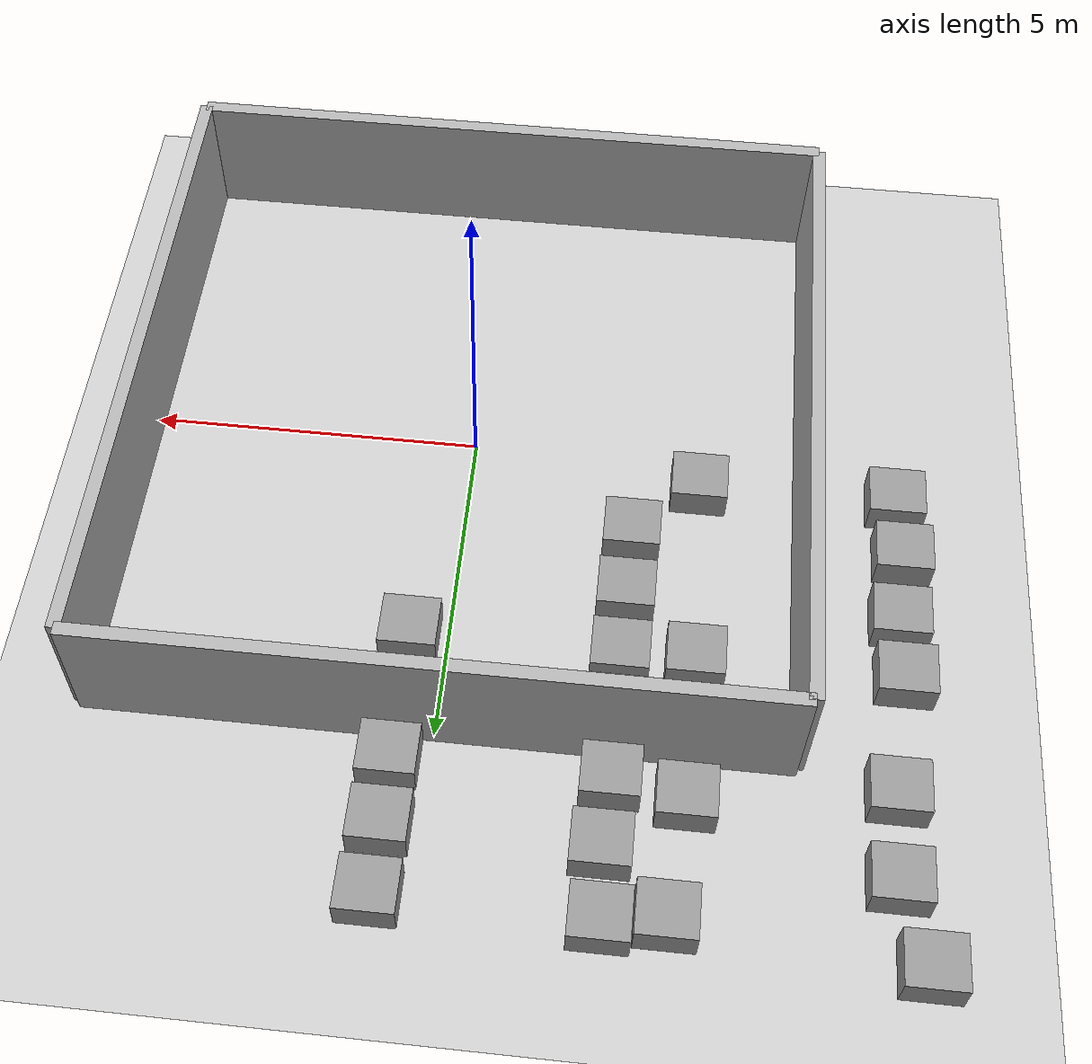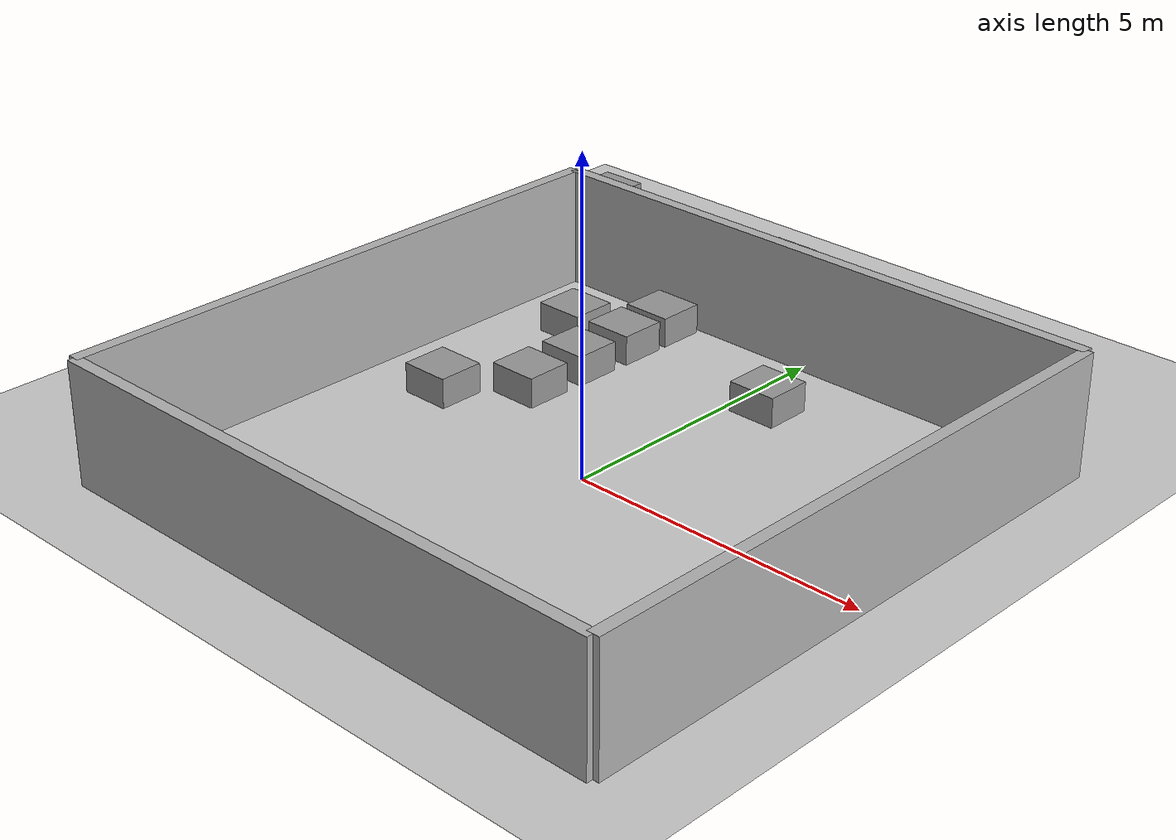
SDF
<?xml version="1.0" ?>
<sdf version="1.6">
  <world name="meu_mundo">
    <!-- Configuração padrão do mundo -->
    <include>
      <uri>model://sun</uri>
    </include>
    <include>
      <uri>model://ground_plane</uri>
    </include>

    <!-- Definição das paredes -->
    <model name="parede_norte">
      <static>true</static>
      <link name="link">
        <visual name="visual">
          <geometry>
            <box>
              <size>10 0.2 2</size>
            </box>
          </geometry>
          <material>
            <ambient>0.7 0.7 0.7 1</ambient>
          </material>
        </visual>
        <collision name="collision">
          <geometry>
            <box>
              <size>10 0.2 2</size>
            </box>
          </geometry>
          <surface>
            <contact>
              <collide_bitmask>0x01</collide_bitmask>
            </contact>
          </surface>
        </collision>
        <pose>0 5 1 0 0 0</pose>
      </link>
    </model>

    <model name="parede_sul">
      <static>true</static>
      <link name="link">
        <visual name="visual">
          <geometry>
            <box>
              <size>10 0.2 2</size>
            </box>
          </geometry>
          <material>
            <ambient>0.7 0.7 0.7 1</ambient>
          </material>
        </visual>
        <collision name="collision">
          <geometry>
            <box>
              <size>10 0.2 2</size>
            </box>
          </geometry>
          <surface>
            <contact>
              <collide_bitmask>0x01</collide_bitmask>
            </contact>
          </surface>
        </collision>
        <pose>0 -5 1 0 0 0</pose>
      </link>
    </model>

    <model name="parede_leste">
      <static>true</static>
      <link name="link">
        <visual name="visual">
          <geometry>
            <box>
              <size>0.2 10 2</size>
            </box>
          </geometry>
          <material>
            <ambient>0.7 0.7 0.7 1</ambient>
          </material>
        </visual>
        <collision name="collision">
          <geometry>
            <box>
              <size>0.2 10 2</size>
            </box>
          </geometry>
          <surface>
            <contact>
              <collide_bitmask>0x01</collide_bitmask>
            </contact>
          </surface>
        </collision>
        <pose>5 0 1 0 0 0</pose>
      </link>
    </model>

    <model name="parede_oeste">
      <static>true</static>
      <link name="link">
        <visual name="visual">
          <geometry>
            <box>
              <size>0.2 10 2</size>
            </box>
          </geometry>
          <material>
            <ambient>0.7 0.7 0.7 1</ambient>
          </material>
        </visual>
        <collision name="collision">
          <geometry>
            <box>
              <size>0.2 10 2</size>
            </box>
          </geometry>
          <surface>
            <contact>
              <collide_bitmask>0x01</collide_bitmask>
            </contact>
          </surface>
        </collision>
        <pose>-5 0 1 0 0 0</pose>
      </link>
    </model>

    <!-- Blocos posicionados aleatoriamente -->
   <model name='unit_box_clone_0'>
      <pose frame=''>0.542038 3.47351 0.249259 0 -0 1e-06</pose>
      <link name='link'>
        <inertial>
          <mass>1</mass>
          <inertia>
            <ixx>0.166667</ixx>
            <ixy>0</ixy>
            <ixz>0</ixz>
            <iyy>0.166667</iyy>
            <iyz>0</iyz>
            <izz>0.166667</izz>
          </inertia>
        </inertial>
        <collision name='collision'>
          <geometry>
            <box>
              <size>0.832462 0.776172 0.498517</size>
            </box>
          </geometry>
          <max_contacts>10</max_contacts>
          <surface>
            <contact>
              <ode/>
            </contact>
            <bounce/>
            <friction>
              <torsional>
                <ode/>
              </torsional>
              <ode/>
            </friction>
          </surface>
        </collision>
        <visual name='visual'>
          <geometry>
            <box>
              <size>0.832462 0.776172 0.498517</size>
            </box>
          </geometry>
          <material>
            <script>
              <name>Gazebo/Grey</name>
              <uri>file://media/materials/scripts/gazebo.material</uri>
            </script>
          </material>
        </visual>
        <self_collide>0</self_collide>
        <enable_wind>0</enable_wind>
        <kinematic>0</kinematic>
      </link>
    </model>
    <model name='unit_box_clone_1'>
      <pose frame=''>0.55967 5.47509 0.249259 0 -0 1e-06</pose>
      <link name='link'>
        <inertial>
          <mass>1</mass>
          <inertia>
            <ixx>0.166667</ixx>
            <ixy>0</ixy>
            <ixz>0</ixz>
            <iyy>0.166667</iyy>
            <iyz>0</iyz>
            <izz>0.166667</izz>
          </inertia>
        </inertial>
        <collision name='collision'>
          <geometry>
            <box>
              <size>0.832462 0.776172 0.498517</size>
            </box>
          </geometry>
          <max_contacts>10</max_contacts>
          <surface>
            <contact>
              <ode/>
            </contact>
            <bounce/>
            <friction>
              <torsional>
                <ode/>
              </torsional>
              <ode/>
            </friction>
          </surface>
        </collision>
        <visual name='visual'>
          <geometry>
            <box>
              <size>0.832462 0.776172 0.498517</size>
            </box>
          </geometry>
          <material>
            <script>
              <name>Gazebo/Grey</name>
              <uri>file://media/materials/scripts/gazebo.material</uri>
            </script>
          </material>
        </visual>
        <self_collide>0</self_collide>
        <enable_wind>0</enable_wind>
        <kinematic>0</kinematic>
      </link>
    </model>
    <model name='unit_box_clone_2'>
      <pose frame=''>0.545616 7.45285 0.249259 0 -0 1e-06</pose>
      <link name='link'>
        <inertial>
          <mass>1</mass>
          <inertia>
            <ixx>0.166667</ixx>
            <ixy>0</ixy>
            <ixz>0</ixz>
            <iyy>0.166667</iyy>
            <iyz>0</iyz>
            <izz>0.166667</izz>
          </inertia>
        </inertial>
        <collision name='collision'>
          <geometry>
            <box>
              <size>0.832462 0.776172 0.498517</size>
            </box>
          </geometry>
          <max_contacts>10</max_contacts>
          <surface>
            <contact>
              <ode/>
            </contact>
            <bounce/>
            <friction>
              <torsional>
                <ode/>
              </torsional>
              <ode/>
            </friction>
          </surface>
        </collision>
        <visual name='visual'>
          <geometry>
            <box>
              <size>0.832462 0.776172 0.498517</size>
            </box>
          </geometry>
          <material>
            <script>
              <name>Gazebo/Grey</name>
              <uri>file://media/materials/scripts/gazebo.material</uri>
            </script>
          </material>
        </visual>
        <self_collide>0</self_collide>
        <enable_wind>0</enable_wind>
        <kinematic>0</kinematic>
      </link>
    </model>
    <model name='unit_box_clone_3'>
      <pose frame=''>0.543198 6.45342 0.249259 0 -0 1e-06</pose>
      <link name='link'>
        <inertial>
          <mass>1</mass>
          <inertia>
            <ixx>0.166667</ixx>
            <ixy>0</ixy>
            <ixz>0</ixz>
            <iyy>0.166667</iyy>
            <iyz>0</iyz>
            <izz>0.166667</izz>
          </inertia>
        </inertial>
        <collision name='collision'>
          <geometry>
            <box>
              <size>0.832462 0.776172 0.498517</size>
            </box>
          </geometry>
          <max_contacts>10</max_contacts>
          <surface>
            <contact>
              <ode/>
            </contact>
            <bounce/>
            <friction>
              <torsional>
                <ode/>
              </torsional>
              <ode/>
            </friction>
          </surface>
        </collision>
        <visual name='visual'>
          <geometry>
            <box>
              <size>0.832462 0.776172 0.498517</size>
            </box>
          </geometry>
          <material>
            <script>
              <name>Gazebo/Grey</name>
              <uri>file://media/materials/scripts/gazebo.material</uri>
            </script>
          </material>
        </visual>
        <self_collide>0</self_collide>
        <enable_wind>0</enable_wind>
        <kinematic>0</kinematic>
      </link>
    </model>
    <model name='unit_box_clone_4'>
      <pose frame=''>-2.47532 7.50096 0.249259 0 -0 1e-06</pose>
      <link name='link'>
        <inertial>
          <mass>1</mass>
          <inertia>
            <ixx>0.166667</ixx>
            <ixy>0</ixy>
            <ixz>0</ixz>
            <iyy>0.166667</iyy>
            <iyz>0</iyz>
            <izz>0.166667</izz>
          </inertia>
        </inertial>
        <collision name='collision'>
          <geometry>
            <box>
              <size>0.832462 0.776172 0.498517</size>
            </box>
          </geometry>
          <max_contacts>10</max_contacts>
          <surface>
            <contact>
              <ode/>
            </contact>
            <bounce/>
            <friction>
              <torsional>
                <ode/>
              </torsional>
              <ode/>
            </friction>
          </surface>
        </collision>
        <visual name='visual'>
          <geometry>
            <box>
              <size>0.832462 0.776172 0.498517</size>
            </box>
          </geometry>
          <material>
            <script>
              <name>Gazebo/Grey</name>
              <uri>file://media/materials/scripts/gazebo.material</uri>
            </script>
          </material>
        </visual>
        <self_collide>0</self_collide>
        <enable_wind>0</enable_wind>
        <kinematic>0</kinematic>
      </link>
    </model>
    <model name='unit_box_clone_5'>
      <pose frame=''>-2.47617 5.47727 0.249259 0 -0 1e-06</pose>
      <link name='link'>
        <inertial>
          <mass>1</mass>
          <inertia>
            <ixx>0.166667</ixx>
            <ixy>0</ixy>
            <ixz>0</ixz>
            <iyy>0.166667</iyy>
            <iyz>0</iyz>
            <izz>0.166667</izz>
          </inertia>
        </inertial>
        <collision name='collision'>
          <geometry>
            <box>
              <size>0.832462 0.776172 0.498517</size>
            </box>
          </geometry>
          <max_contacts>10</max_contacts>
          <surface>
            <contact>
              <ode/>
            </contact>
            <bounce/>
            <friction>
              <torsional>
                <ode/>
              </torsional>
              <ode/>
            </friction>
          </surface>
        </collision>
        <visual name='visual'>
          <geometry>
            <box>
              <size>0.832462 0.776172 0.498517</size>
            </box>
          </geometry>
          <material>
            <script>
              <name>Gazebo/Grey</name>
              <uri>file://media/materials/scripts/gazebo.material</uri>
            </script>
          </material>
        </visual>
        <self_collide>0</self_collide>
        <enable_wind>0</enable_wind>
        <kinematic>0</kinematic>
      </link>
    </model>
    <model name='unit_box_clone_6'>
      <pose frame=''>-2.4761 4.43201 0.249259 0 -0 1e-06</pose>
      <link name='link'>
        <inertial>
          <mass>1</mass>
          <inertia>
            <ixx>0.166667</ixx>
            <ixy>0</ixy>
            <ixz>0</ixz>
            <iyy>0.166667</iyy>
            <iyz>0</iyz>
            <izz>0.166667</izz>
          </inertia>
        </inertial>
        <collision name='collision'>
          <geometry>
            <box>
              <size>0.832462 0.776172 0.498517</size>
            </box>
          </geometry>
          <max_contacts>10</max_contacts>
          <surface>
            <contact>
              <ode/>
            </contact>
            <bounce/>
            <friction>
              <torsional>
                <ode/>
              </torsional>
              <ode/>
            </friction>
          </surface>
        </collision>
        <visual name='visual'>
          <geometry>
            <box>
              <size>0.832462 0.776172 0.498517</size>
            </box>
          </geometry>
          <material>
            <script>
              <name>Gazebo/Grey</name>
              <uri>file://media/materials/scripts/gazebo.material</uri>
            </script>
          </material>
        </visual>
        <self_collide>0</self_collide>
        <enable_wind>0</enable_wind>
        <kinematic>0</kinematic>
      </link>
    </model>
    <model name='unit_box_clone_7'>
      <pose frame=''>-2.47412 3.51977 0.249259 0 -0 1e-06</pose>
      <link name='link'>
        <inertial>
          <mass>1</mass>
          <inertia>
            <ixx>0.166667</ixx>
            <ixy>0</ixy>
            <ixz>0</ixz>
            <iyy>0.166667</iyy>
            <iyz>0</iyz>
            <izz>0.166667</izz>
          </inertia>
        </inertial>
        <collision name='collision'>
          <geometry>
            <box>
              <size>0.832462 0.776172 0.498517</size>
            </box>
          </geometry>
          <max_contacts>10</max_contacts>
          <surface>
            <contact>
              <ode/>
            </contact>
            <bounce/>
            <friction>
              <torsional>
                <ode/>
              </torsional>
              <ode/>
            </friction>
          </surface>
        </collision>
        <visual name='visual'>
          <geometry>
            <box>
              <size>0.832462 0.776172 0.498517</size>
            </box>
          </geometry>
          <material>
            <script>
              <name>Gazebo/Grey</name>
              <uri>file://media/materials/scripts/gazebo.material</uri>
            </script>
          </material>
        </visual>
        <self_collide>0</self_collide>
        <enable_wind>0</enable_wind>
        <kinematic>0</kinematic>
      </link>
    </model>
    <model name='unit_box_clone_8'>
      <pose frame=''>-2.50304 1.43642 0.249259 0 -0 1e-06</pose>
      <link name='link'>
        <inertial>
          <mass>1</mass>
          <inertia>
            <ixx>0.166667</ixx>
            <ixy>0</ixy>
            <ixz>0</ixz>
            <iyy>0.166667</iyy>
            <iyz>0</iyz>
            <izz>0.166667</izz>
          </inertia>
        </inertial>
        <collision name='collision'>
          <geometry>
            <box>
              <size>0.832462 0.776172 0.498517</size>
            </box>
          </geometry>
          <max_contacts>10</max_contacts>
          <surface>
            <contact>
              <ode/>
            </contact>
            <bounce/>
            <friction>
              <torsional>
                <ode/>
              </torsional>
              <ode/>
            </friction>
          </surface>
        </collision>
        <visual name='visual'>
          <geometry>
            <box>
              <size>0.832462 0.776172 0.498517</size>
            </box>
          </geometry>
          <material>
            <script>
              <name>Gazebo/Grey</name>
              <uri>file://media/materials/scripts/gazebo.material</uri>
            </script>
          </material>
        </visual>
        <self_collide>0</self_collide>
        <enable_wind>0</enable_wind>
        <kinematic>0</kinematic>
      </link>
    </model>
    <model name='unit_box_clone_9'>
      <pose frame=''>-2.48784 2.49434 0.249259 0 -0 1e-06</pose>
      <link name='link'>
        <inertial>
          <mass>1</mass>
          <inertia>
            <ixx>0.166667</ixx>
            <ixy>0</ixy>
            <ixz>0</ixz>
            <iyy>0.166667</iyy>
            <iyz>0</iyz>
            <izz>0.166667</izz>
          </inertia>
        </inertial>
        <collision name='collision'>
          <geometry>
            <box>
              <size>0.832462 0.776172 0.498517</size>
            </box>
          </geometry>
          <max_contacts>10</max_contacts>
          <surface>
            <contact>
              <ode/>
            </contact>
            <bounce/>
            <friction>
              <torsional>
                <ode/>
              </torsional>
              <ode/>
            </friction>
          </surface>
        </collision>
        <visual name='visual'>
          <geometry>
            <box>
              <size>0.832462 0.776172 0.498517</size>
            </box>
          </geometry>
          <material>
            <script>
              <name>Gazebo/Grey</name>
              <uri>file://media/materials/scripts/gazebo.material</uri>
            </script>
          </material>
        </visual>
        <self_collide>0</self_collide>
        <enable_wind>0</enable_wind>
        <kinematic>0</kinematic>
      </link>
    </model>
    <model name='unit_box_clone_10'>
      <pose frame=''>-3.45923 0.496209 0.249259 0 -0 1e-06</pose>
      <link name='link'>
        <inertial>
          <mass>1</mass>
          <inertia>
            <ixx>0.166667</ixx>
            <ixy>0</ixy>
            <ixz>0</ixz>
            <iyy>0.166667</iyy>
            <iyz>0</iyz>
            <izz>0.166667</izz>
          </inertia>
        </inertial>
        <collision name='collision'>
          <geometry>
            <box>
              <size>0.832462 0.776172 0.498517</size>
            </box>
          </geometry>
          <max_contacts>10</max_contacts>
          <surface>
            <contact>
              <ode/>
            </contact>
            <bounce/>
            <friction>
              <torsional>
                <ode/>
              </torsional>
              <ode/>
            </friction>
          </surface>
        </collision>
        <visual name='visual'>
          <geometry>
            <box>
              <size>0.832462 0.776172 0.498517</size>
            </box>
          </geometry>
          <material>
            <script>
              <name>Gazebo/Grey</name>
              <uri>file://media/materials/scripts/gazebo.material</uri>
            </script>
          </material>
        </visual>
        <self_collide>0</self_collide>
        <enable_wind>0</enable_wind>
        <kinematic>0</kinematic>
      </link>
    </model>
    <model name='unit_box_clone_11'>
      <pose frame=''>-6.40158 0.469192 0.249259 0 -0 1e-06</pose>
      <link name='link'>
        <inertial>
          <mass>1</mass>
          <inertia>
            <ixx>0.166667</ixx>
            <ixy>0</ixy>
            <ixz>0</ixz>
            <iyy>0.166667</iyy>
            <iyz>0</iyz>
            <izz>0.166667</izz>
          </inertia>
        </inertial>
        <collision name='collision'>
          <geometry>
            <box>
              <size>0.832462 0.776172 0.498517</size>
            </box>
          </geometry>
          <max_contacts>10</max_contacts>
          <surface>
            <contact>
              <ode/>
            </contact>
            <bounce/>
            <friction>
              <torsional>
                <ode/>
              </torsional>
              <ode/>
            </friction>
          </surface>
        </collision>
        <visual name='visual'>
          <geometry>
            <box>
              <size>0.832462 0.776172 0.498517</size>
            </box>
          </geometry>
          <material>
            <script>
              <name>Gazebo/Grey</name>
              <uri>file://media/materials/scripts/gazebo.material</uri>
            </script>
          </material>
        </visual>
        <self_collide>0</self_collide>
        <enable_wind>0</enable_wind>
        <kinematic>0</kinematic>
      </link>
    </model>
    <model name='unit_box_clone_12'>
      <pose frame=''>-6.48918 1.4437 0.249259 0 -0 1e-06</pose>
      <link name='link'>
        <inertial>
          <mass>1</mass>
          <inertia>
            <ixx>0.166667</ixx>
            <ixy>0</ixy>
            <ixz>0</ixz>
            <iyy>0.166667</iyy>
            <iyz>0</iyz>
            <izz>0.166667</izz>
          </inertia>
        </inertial>
        <collision name='collision'>
          <geometry>
            <box>
              <size>0.832462 0.776172 0.498517</size>
            </box>
          </geometry>
          <max_contacts>10</max_contacts>
          <surface>
            <contact>
              <ode/>
            </contact>
            <bounce/>
            <friction>
              <torsional>
                <ode/>
              </torsional>
              <ode/>
            </friction>
          </surface>
        </collision>
        <visual name='visual'>
          <geometry>
            <box>
              <size>0.832462 0.776172 0.498517</size>
            </box>
          </geometry>
          <material>
            <script>
              <name>Gazebo/Grey</name>
              <uri>file://media/materials/scripts/gazebo.material</uri>
            </script>
          </material>
        </visual>
        <self_collide>0</self_collide>
        <enable_wind>0</enable_wind>
        <kinematic>0</kinematic>
      </link>
    </model>
    <model name='unit_box_clone_13'>
      <pose frame=''>-6.43074 2.53456 0.249259 0 -0 1e-06</pose>
      <link name='link'>
        <inertial>
          <mass>1</mass>
          <inertia>
            <ixx>0.166667</ixx>
            <ixy>0</ixy>
            <ixz>0</ixz>
            <iyy>0.166667</iyy>
            <iyz>0</iyz>
            <izz>0.166667</izz>
          </inertia>
        </inertial>
        <collision name='collision'>
          <geometry>
            <box>
              <size>0.832462 0.776172 0.498517</size>
            </box>
          </geometry>
          <max_contacts>10</max_contacts>
          <surface>
            <contact>
              <ode/>
            </contact>
            <bounce/>
            <friction>
              <torsional>
                <ode/>
              </torsional>
              <ode/>
            </friction>
          </surface>
        </collision>
        <visual name='visual'>
          <geometry>
            <box>
              <size>0.832462 0.776172 0.498517</size>
            </box>
          </geometry>
          <material>
            <script>
              <name>Gazebo/Grey</name>
              <uri>file://media/materials/scripts/gazebo.material</uri>
            </script>
          </material>
        </visual>
        <self_collide>0</self_collide>
        <enable_wind>0</enable_wind>
        <kinematic>0</kinematic>
      </link>
    </model>
    <model name='unit_box_clone_14'>
      <pose frame=''>-6.48652 3.48844 0.249259 0 -0 1e-06</pose>
      <link name='link'>
        <inertial>
          <mass>1</mass>
          <inertia>
            <ixx>0.166667</ixx>
            <ixy>0</ixy>
            <ixz>0</ixz>
            <iyy>0.166667</iyy>
            <iyz>0</iyz>
            <izz>0.166667</izz>
          </inertia>
        </inertial>
        <collision name='collision'>
          <geometry>
            <box>
              <size>0.832462 0.776172 0.498517</size>
            </box>
          </geometry>
          <max_contacts>10</max_contacts>
          <surface>
            <contact>
              <ode/>
            </contact>
            <bounce/>
            <friction>
              <torsional>
                <ode/>
              </torsional>
              <ode/>
            </friction>
          </surface>
        </collision>
        <visual name='visual'>
          <geometry>
            <box>
              <size>0.832462 0.776172 0.498517</size>
            </box>
          </geometry>
          <material>
            <script>
              <name>Gazebo/Grey</name>
              <uri>file://media/materials/scripts/gazebo.material</uri>
            </script>
          </material>
        </visual>
        <self_collide>0</self_collide>
        <enable_wind>0</enable_wind>
        <kinematic>0</kinematic>
      </link>
    </model>
    <model name='unit_box_clone_15'>
      <pose frame=''>-6.34699 5.29292 0.249259 0 -0 1e-06</pose>
      <link name='link'>
        <inertial>
          <mass>1</mass>
          <inertia>
            <ixx>0.166667</ixx>
            <ixy>0</ixy>
            <ixz>0</ixz>
            <iyy>0.166667</iyy>
            <iyz>0</iyz>
            <izz>0.166667</izz>
          </inertia>
        </inertial>
        <collision name='collision'>
          <geometry>
            <box>
              <size>0.832462 0.776172 0.498517</size>
            </box>
          </geometry>
          <max_contacts>10</max_contacts>
          <surface>
            <contact>
              <ode/>
            </contact>
            <bounce/>
            <friction>
              <torsional>
                <ode/>
              </torsional>
              <ode/>
            </friction>
          </surface>
        </collision>
        <visual name='visual'>
          <geometry>
            <box>
              <size>0.832462 0.776172 0.498517</size>
            </box>
          </geometry>
          <material>
            <script>
              <name>Gazebo/Grey</name>
              <uri>file://media/materials/scripts/gazebo.material</uri>
            </script>
          </material>
        </visual>
        <self_collide>0</self_collide>
        <enable_wind>0</enable_wind>
        <kinematic>0</kinematic>
      </link>
    </model>
    <model name='unit_box_clone_16'>
      <pose frame=''>-6.34299 6.55486 0.249259 0 -0 1e-06</pose>
      <link name='link'>
        <inertial>
          <mass>1</mass>
          <inertia>
            <ixx>0.166667</ixx>
            <ixy>0</ixy>
            <ixz>0</ixz>
            <iyy>0.166667</iyy>
            <iyz>0</iyz>
            <izz>0.166667</izz>
          </inertia>
        </inertial>
        <collision name='collision'>
          <geometry>
            <box>
              <size>0.832462 0.776172 0.498517</size>
            </box>
          </geometry>
          <max_contacts>10</max_contacts>
          <surface>
            <contact>
              <ode/>
            </contact>
            <bounce/>
            <friction>
              <torsional>
                <ode/>
              </torsional>
              <ode/>
            </friction>
          </surface>
        </collision>
        <visual name='visual'>
          <geometry>
            <box>
              <size>0.832462 0.776172 0.498517</size>
            </box>
          </geometry>
          <material>
            <script>
              <name>Gazebo/Grey</name>
              <uri>file://media/materials/scripts/gazebo.material</uri>
            </script>
          </material>
        </visual>
        <self_collide>0</self_collide>
        <enable_wind>0</enable_wind>
        <kinematic>0</kinematic>
      </link>
    </model>
    <model name='unit_box_clone_17'>
      <pose frame=''>-6.73169 7.69456 0.249259 0 -0 1e-06</pose>
      <link name='link'>
        <inertial>
          <mass>1</mass>
          <inertia>
            <ixx>0.166667</ixx>
            <ixy>0</ixy>
            <ixz>0</ixz>
            <iyy>0.166667</iyy>
            <iyz>0</iyz>
            <izz>0.166667</izz>
          </inertia>
        </inertial>
        <collision name='collision'>
          <geometry>
            <box>
              <size>0.832462 0.776172 0.498517</size>
            </box>
          </geometry>
          <max_contacts>10</max_contacts>
          <surface>
            <contact>
              <ode/>
            </contact>
            <bounce/>
            <friction>
              <torsional>
                <ode/>
              </torsional>
              <ode/>
            </friction>
          </surface>
        </collision>
        <visual name='visual'>
          <geometry>
            <box>
              <size>0.832462 0.776172 0.498517</size>
            </box>
          </geometry>
          <material>
            <script>
              <name>Gazebo/Grey</name>
              <uri>file://media/materials/scripts/gazebo.material</uri>
            </script>
          </material>
        </visual>
        <self_collide>0</self_collide>
        <enable_wind>0</enable_wind>
        <kinematic>0</kinematic>
      </link>
    </model>
    <model name='unit_box_clone_19'>
      <pose frame=''>-2.42105 6.48001 0.249259 0 -0 1e-06</pose>
      <link name='link'>
        <inertial>
          <mass>1</mass>
          <inertia>
            <ixx>0.166667</ixx>
            <ixy>0</ixy>
            <ixz>0</ixz>
            <iyy>0.166667</iyy>
            <iyz>0</iyz>
            <izz>0.166667</izz>
          </inertia>
        </inertial>
        <collision name='collision'>
          <geometry>
            <box>
              <size>0.832462 0.776172 0.498517</size>
            </box>
          </geometry>
          <max_contacts>10</max_contacts>
          <surface>
            <contact>
              <ode/>
            </contact>
            <bounce/>
            <friction>
              <torsional>
                <ode/>
              </torsional>
              <ode/>
            </friction>
          </surface>
        </collision>
        <visual name='visual'>
          <geometry>
            <box>
              <size>0.832462 0.776172 0.498517</size>
            </box>
          </geometry>
          <material>
            <script>
              <name>Gazebo/Grey</name>
              <uri>file://media/materials/scripts/gazebo.material</uri>
            </script>
          </material>
        </visual>
        <self_collide>0</self_collide>
        <enable_wind>0</enable_wind>
        <kinematic>0</kinematic>
      </link>
    </model>
    <model name='unit_box_clone_20'>
      <pose frame=''>-3.53767 3.50066 0.249259 0 -0 1e-06</pose>
      <link name='link'>
        <inertial>
          <mass>1</mass>
          <inertia>
            <ixx>0.166667</ixx>
            <ixy>0</ixy>
            <ixz>0</ixz>
            <iyy>0.166667</iyy>
            <iyz>0</iyz>
            <izz>0.166667</izz>
          </inertia>
        </inertial>
        <collision name='collision'>
          <geometry>
            <box>
              <size>0.832462 0.776172 0.498517</size>
            </box>
          </geometry>
          <max_contacts>10</max_contacts>
          <surface>
            <contact>
              <ode/>
            </contact>
            <bounce/>
            <friction>
              <torsional>
                <ode/>
              </torsional>
              <ode/>
            </friction>
          </surface>
        </collision>
        <visual name='visual'>
          <geometry>
            <box>
              <size>0.832462 0.776172 0.498517</size>
            </box>
          </geometry>
          <material>
            <script>
              <name>Gazebo/Grey</name>
              <uri>file://media/materials/scripts/gazebo.material</uri>
            </script>
          </material>
        </visual>
        <self_collide>0</self_collide>
        <enable_wind>0</enable_wind>
        <kinematic>0</kinematic>
      </link>
    </model>
    <model name='unit_box_clone_21'>
      <pose frame=''>-3.51197 5.67389 0.249259 0 -0 1e-06</pose>
      <link name='link'>
        <inertial>
          <mass>1</mass>
          <inertia>
            <ixx>0.166667</ixx>
            <ixy>0</ixy>
            <ixz>0</ixz>
            <iyy>0.166667</iyy>
            <iyz>0</iyz>
            <izz>0.166667</izz>
          </inertia>
        </inertial>
        <collision name='collision'>
          <geometry>
            <box>
              <size>0.832462 0.776172 0.498517</size>
            </box>
          </geometry>
          <max_contacts>10</max_contacts>
          <surface>
            <contact>
              <ode/>
            </contact>
            <bounce/>
            <friction>
              <torsional>
                <ode/>
              </torsional>
              <ode/>
            </friction>
          </surface>
        </collision>
        <visual name='visual'>
          <geometry>
            <box>
              <size>0.832462 0.776172 0.498517</size>
            </box>
          </geometry>
          <material>
            <script>
              <name>Gazebo/Grey</name>
              <uri>file://media/materials/scripts/gazebo.material</uri>
            </script>
          </material>
        </visual>
        <self_collide>0</self_collide>
        <enable_wind>0</enable_wind>
        <kinematic>0</kinematic>
      </link>
    </model>
    <model name='unit_box_clone_22'>
      <pose frame=''>-3.33477 7.37903 0.249259 0 -0 1e-06</pose>
      <link name='link'>
        <inertial>
          <mass>1</mass>
          <inertia>
            <ixx>0.166667</ixx>
            <ixy>0</ixy>
            <ixz>0</ixz>
            <iyy>0.166667</iyy>
            <iyz>0</iyz>
            <izz>0.166667</izz>
          </inertia>
        </inertial>
        <collision name='collision'>
          <geometry>
            <box>
              <size>0.832462 0.776172 0.498517</size>
            </box>
          </geometry>
          <max_contacts>10</max_contacts>
          <surface>
            <contact>
              <ode/>
            </contact>
            <bounce/>
            <friction>
              <torsional>
                <ode/>
              </torsional>
              <ode/>
            </friction>
          </surface>
        </collision>
        <visual name='visual'>
          <geometry>
            <box>
              <size>0.832462 0.776172 0.498517</size>
            </box>
          </geometry>
          <material>
            <script>
              <name>Gazebo/Grey</name>
              <uri>file://media/materials/scripts/gazebo.material</uri>
            </script>
          </material>
        </visual>
        <self_collide>0</self_collide>
        <enable_wind>0</enable_wind>
        <kinematic>0</kinematic>
      </link>
    </model>

      <model name='unit_box'>
        <pose frame=''>0.518834 0.484919 0.249258 0 -0 1e-06</pose>
        <scale>0.832461 0.776172 0.498517</scale>
        <link name='link'>
          <pose frame=''>0.518834 0.484919 0.249258 0 -0 1e-06</pose>
          <velocity>0 0 0 0 -0 0</velocity>
          <acceleration>0 -0 0 0 -0 0</acceleration>
          <wrench>0 -0 0 0 -0 0</wrench>
        </link>
      </model>
      <model name='unit_box_clone'>
        <pose frame=''>0.5497 1.49077 0.249258 0 -0 1e-06</pose>
        <scale>1 1 1</scale>
        <link name='link'>
          <pose frame=''>0.5497 1.49077 0.249258 0 -0 1e-06</pose>
          <velocity>0 0 0 0 -0 0</velocity>
          <acceleration>0 -0 -0 0 -0 0</acceleration>
          <wrench>0 -0 -0 0 -0 0</wrench>
        </link>
      </model>
      <model name='unit_box_clone_0'>
        <pose frame=''>0.542038 3.47351 0.249258 0 -0 1e-06</pose>
        <scale>1 1 1</scale>
        <link name='link'>
          <pose frame=''>0.542038 3.47351 0.249258 0 -0 1e-06</pose>
          <velocity>0 0 0 0 -0 0</velocity>
          <acceleration>-0 0 0 0 -0 0</acceleration>
          <wrench>-0 0 0 0 -0 0</wrench>
        </link>
      </model>
      <model name='unit_box_clone_1'>
        <pose frame=''>0.55967 5.47509 0.249258 0 -0 1e-06</pose>
        <scale>1 1 1</scale>
        <link name='link'>
          <pose frame=''>0.55967 5.47509 0.249258 0 -0 1e-06</pose>
          <velocity>0 0 0 0 -0 0</velocity>
          <acceleration>0 -0 -0 0 -0 0</acceleration>
          <wrench>0 -0 -0 0 -0 0</wrench>
        </link>
      </model>
      <model name='unit_box_clone_10'>
        <pose frame=''>-3.45923 0.496209 0.249258 0 -0 1e-06</pose>
        <scale>1 1 1</scale>
        <link name='link'>
          <pose frame=''>-3.45923 0.496209 0.249258 0 -0 1e-06</pose>
          <velocity>0 0 0 0 -0 0</velocity>
          <acceleration>-0 0 0 0 -0 0</acceleration>
          <wrench>-0 0 0 0 -0 0</wrench>
        </link>
      </model>
      <model name='unit_box_clone_11'>
        <pose frame=''>-6.40158 0.469192 0.249258 0 -0 1e-06</pose>
        <scale>1 1 1</scale>
        <link name='link'>
          <pose frame=''>-6.40158 0.469192 0.249258 0 -0 1e-06</pose>
          <velocity>0 0 0 0 -0 0</velocity>
          <acceleration>-0 0 0 0 -0 0</acceleration>
          <wrench>-0 0 0 0 -0 0</wrench>
        </link>
      </model>
      <model name='unit_box_clone_12'>
        <pose frame=''>-6.48918 1.4437 0.249258 0 -0 1e-06</pose>
        <scale>1 1 1</scale>
        <link name='link'>
          <pose frame=''>-6.48918 1.4437 0.249258 0 -0 1e-06</pose>
          <velocity>0 0 0 0 -0 0</velocity>
          <acceleration>0 -0 -0 0 -0 0</acceleration>
          <wrench>0 -0 -0 0 -0 0</wrench>
        </link>
      </model>
      <model name='unit_box_clone_13'>
        <pose frame=''>-6.43074 2.53456 0.249258 0 -0 1e-06</pose>
        <scale>1 1 1</scale>
        <link name='link'>
          <pose frame=''>-6.43074 2.53456 0.249258 0 -0 1e-06</pose>
          <velocity>0 0 0 0 -0 0</velocity>
          <acceleration>0 -0 -0 0 -0 0</acceleration>
          <wrench>0 -0 -0 0 -0 0</wrench>
        </link>
      </model>
      <model name='unit_box_clone_14'>
        <pose frame=''>-6.48652 3.48844 0.249258 0 -0 1e-06</pose>
        <scale>1 1 1</scale>
        <link name='link'>
          <pose frame=''>-6.48652 3.48844 0.249258 0 -0 1e-06</pose>
          <velocity>0 0 0 0 -0 0</velocity>
          <acceleration>0 -0 -0 0 -0 0</acceleration>
          <wrench>0 -0 -0 0 -0 0</wrench>
        </link>
      </model>
      <model name='unit_box_clone_15'>
        <pose frame=''>-6.45405 5.48233 0.249258 0 -0 1e-06</pose>
        <scale>1 1 1</scale>
        <link name='link'>
          <pose frame=''>-6.45405 5.48233 0.249258 0 -0 1e-06</pose>
          <velocity>0 0 0 0 -0 0</velocity>
          <acceleration>-0 0 0 0 -0 0</acceleration>
          <wrench>-0 0 0 0 -0 0</wrench>
        </link>
      </model>
      <model name='unit_box_clone_16'>
        <pose frame=''>-6.50367 6.55587 0.249258 0 -0 1e-06</pose>
        <scale>1 1 1</scale>
        <link name='link'>
          <pose frame=''>-6.50367 6.55587 0.249258 0 -0 1e-06</pose>
          <velocity>0 0 0 0 -0 0</velocity>
          <acceleration>-0 0 0 0 -0 0</acceleration>
          <wrench>-0 0 0 0 -0 0</wrench>
        </link>
      </model>
      <model name='unit_box_clone_17'>
        <pose frame=''>-6.48562 7.5467 0.249258 0 -0 1e-06</pose>
        <scale>1 1 1</scale>
        <link name='link'>
          <pose frame=''>-6.48562 7.5467 0.249258 0 -0 1e-06</pose>
          <velocity>0 0 0 0 -0 0</velocity>
          <acceleration>0 -0 -0 0 -0 0</acceleration>
          <wrench>0 -0 -0 0 -0 0</wrench>
        </link>
      </model>
      <model name='unit_box_clone_19'>
        <pose frame=''>-2.42105 6.48001 0.249258 0 -0 1e-06</pose>
        <scale>1 1 1</scale>
        <link name='link'>
          <pose frame=''>-2.42105 6.48001 0.249258 0 -0 1e-06</pose>
          <velocity>0 0 0 0 -0 0</velocity>
          <acceleration>0 -0 -0 0 -0 0</acceleration>
          <wrench>0 -0 -0 0 -0 0</wrench>
        </link>
      </model>
      <model name='unit_box_clone_2'>
        <pose frame=''>0.545616 7.45285 0.249258 0 -0 1e-06</pose>
        <scale>1 1 1</scale>
        <link name='link'>
          <pose frame=''>0.545616 7.45285 0.249258 0 -0 1e-06</pose>
          <velocity>0 0 0 0 -0 0</velocity>
          <acceleration>-0 0 0 0 -0 0</acceleration>
          <wrench>-0 0 0 0 -0 0</wrench>
        </link>
      </model>
      <model name='unit_box_clone_20'>
        <pose frame=''>-3.53767 3.50066 0.249258 0 -0 1e-06</pose>
        <scale>1 1 1</scale>
        <link name='link'>
          <pose frame=''>-3.53767 3.50066 0.249258 0 -0 1e-06</pose>
          <velocity>0 0 0 0 -0 0</velocity>
          <acceleration>0 -0 -0 0 -0 0</acceleration>
          <wrench>0 -0 -0 0 -0 0</wrench>
        </link>
      </model>
      <model name='unit_box_clone_21'>
        <pose frame=''>-3.4752 5.44171 0.249258 0 -0 1e-06</pose>
        <scale>1 1 1</scale>
        <link name='link'>
          <pose frame=''>-3.4752 5.44171 0.249258 0 -0 1e-06</pose>
          <velocity>0 0 0 0 -0 0</velocity>
          <acceleration>0 -0 -0 0 -0 0</acceleration>
          <wrench>0 -0 -0 0 -0 0</wrench>
        </link>
      </model>
      <model name='unit_box_clone_22'>
        <pose frame=''>-3.51755 7.5323 0.249258 0 -0 1e-06</pose>
        <scale>1 1 1</scale>
        <link name='link'>
          <pose frame=''>-3.51755 7.5323 0.249258 0 -0 1e-06</pose>
          <velocity>0 0 0 0 -0 0</velocity>
          <acceleration>-0 0 0 0 -0 0</acceleration>
          <wrench>-0 0 0 0 -0 0</wrench>
        </link>
      </model>
      <model name='unit_box_clone_3'>
        <pose frame=''>0.543198 6.45342 0.249258 0 -0 1e-06</pose>
        <scale>1 1 1</scale>
        <link name='link'>
          <pose frame=''>0.543198 6.45342 0.249258 0 -0 1e-06</pose>
          <velocity>0 0 0 0 -0 0</velocity>
          <acceleration>0 -0 -0 0 -0 0</acceleration>
          <wrench>0 -0 -0 0 -0 0</wrench>
        </link>
      </model>
      <model name='unit_box_clone_4'>
        <pose frame=''>-2.47532 7.50096 0.249258 0 -0 1e-06</pose>
        <scale>1 1 1</scale>
        <link name='link'>
          <pose frame=''>-2.47532 7.50096 0.249258 0 -0 1e-06</pose>
          <velocity>0 0 0 0 -0 0</velocity>
          <acceleration>-0 0 0 0 -0 0</acceleration>
          <wrench>-0 0 0 0 -0 0</wrench>
        </link>
      </model>
      <model name='unit_box_clone_5'>
        <pose frame=''>-2.52887 5.46662 0.249258 0 -0 1e-06</pose>
        <scale>1 1 1</scale>
        <link name='link'>
          <pose frame=''>-2.52887 5.46662 0.249258 0 -0 1e-06</pose>
          <velocity>0 0 0 0 -0 0</velocity>
          <acceleration>-0 0 0 0 -0 0</acceleration>
          <wrench>-0 0 0 0 -0 0</wrench>
        </link>
      </model>
      <model name='unit_box_clone_6'>
        <pose frame=''>-2.4761 4.43201 0.249258 0 -0 1e-06</pose>
        <scale>1 1 1</scale>
        <link name='link'>
          <pose frame=''>-2.4761 4.43201 0.249258 0 -0 1e-06</pose>
          <velocity>0 0 0 0 -0 0</velocity>
          <acceleration>-0 0 0 0 -0 0</acceleration>
          <wrench>-0 0 0 0 -0 0</wrench>
        </link>
      </model>
      <model name='unit_box_clone_7'>
        <pose frame=''>-2.47412 3.51977 0.249258 0 -0 1e-06</pose>
        <scale>1 1 1</scale>
        <link name='link'>
          <pose frame=''>-2.47412 3.51977 0.249258 0 -0 1e-06</pose>
          <velocity>0 0 0 0 -0 0</velocity>
          <acceleration>0 -0 -0 0 -0 0</acceleration>
          <wrench>0 -0 -0 0 -0 0</wrench>
        </link>
      </model>
      <model name='unit_box_clone_8'>
        <pose frame=''>-2.50304 1.43642 0.249258 0 -0 1e-06</pose>
        <scale>1 1 1</scale>
        <link name='link'>
          <pose frame=''>-2.50304 1.43642 0.249258 0 -0 1e-06</pose>
          <velocity>0 0 0 0 -0 0</velocity>
          <acceleration>-0 0 0 0 -0 0</acceleration>
          <wrench>-0 0 0 0 -0 0</wrench>
        </link>
      </model>
      <model name='unit_box_clone_9'>
        <pose frame=''>-2.48784 2.49434 0.249258 0 -0 1e-06</pose>
        <scale>1 1 1</scale>
        <link name='link'>
          <pose frame=''>-2.48784 2.49434 0.249258 0 -0 1e-06</pose>
          <velocity>0 0 0 0 -0 0</velocity>
          <acceleration>0 -0 -0 0 -0 0</acceleration>
          <wrench>0 -0 -0 0 -0 0</wrench>
        </link>
      </model>

  </world>
</sdf>
